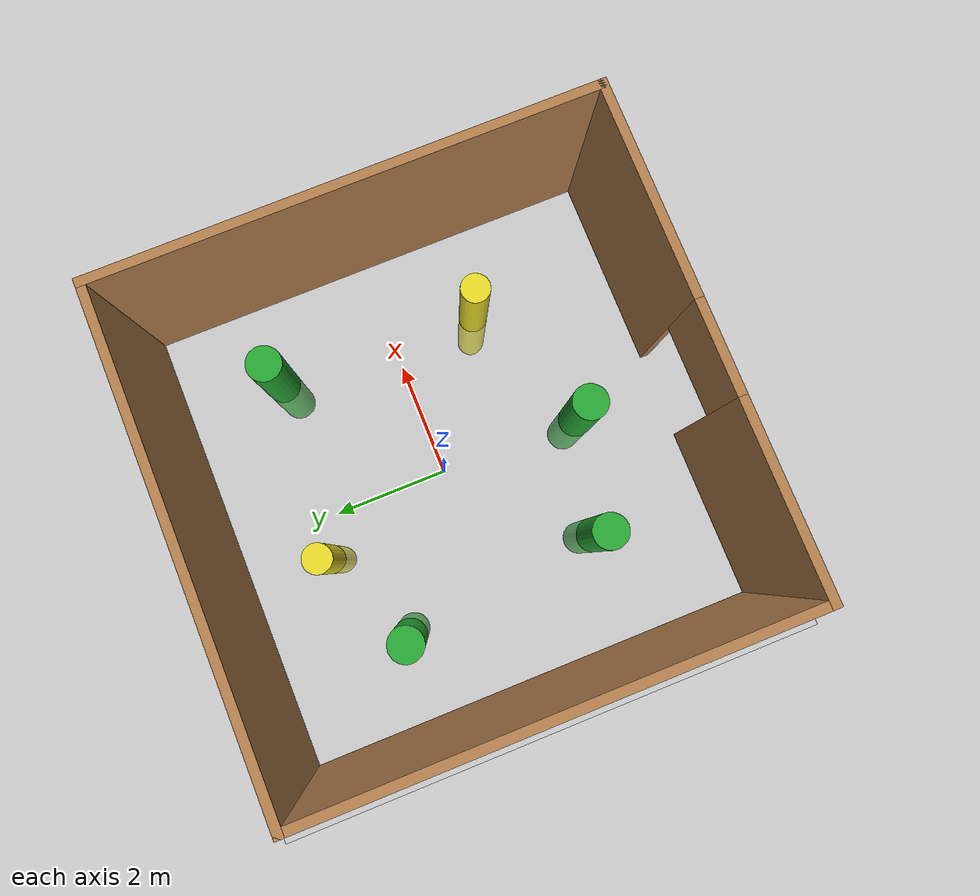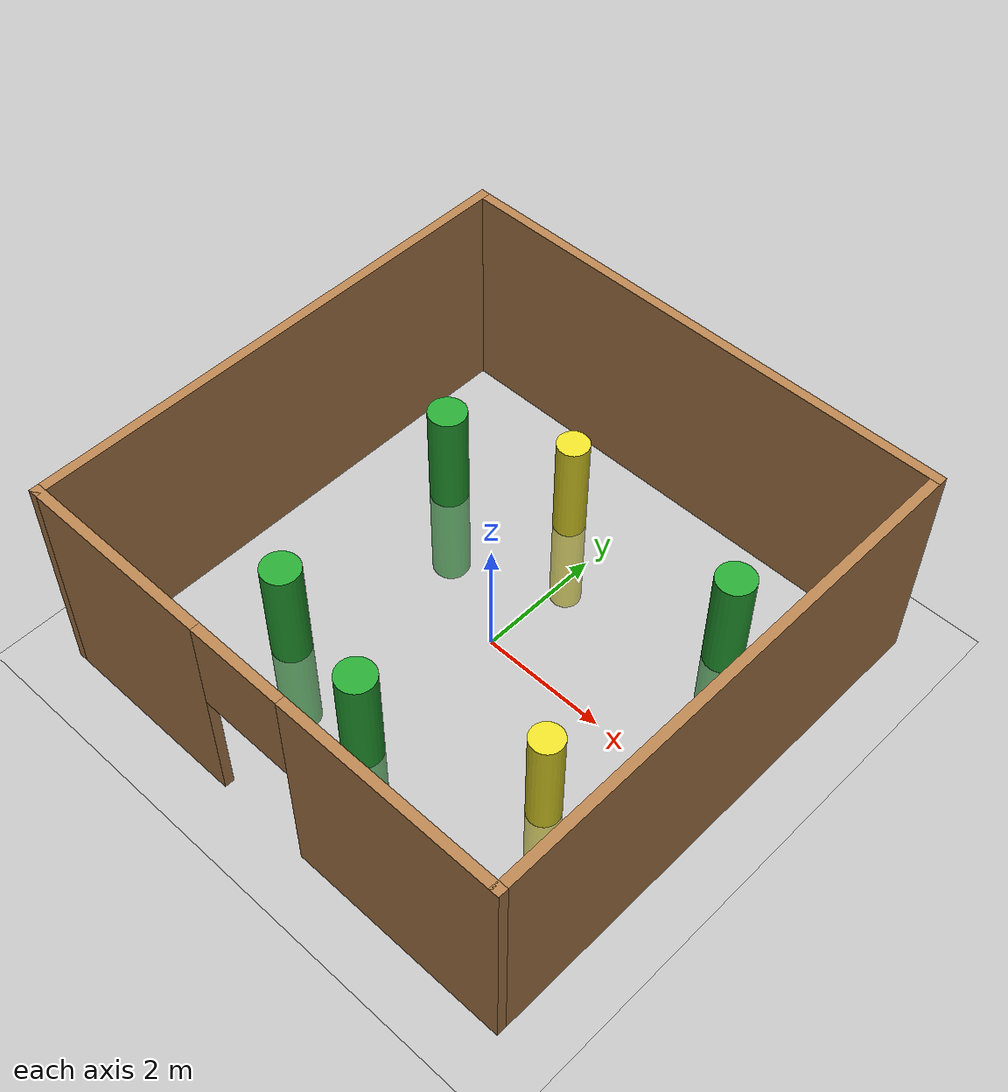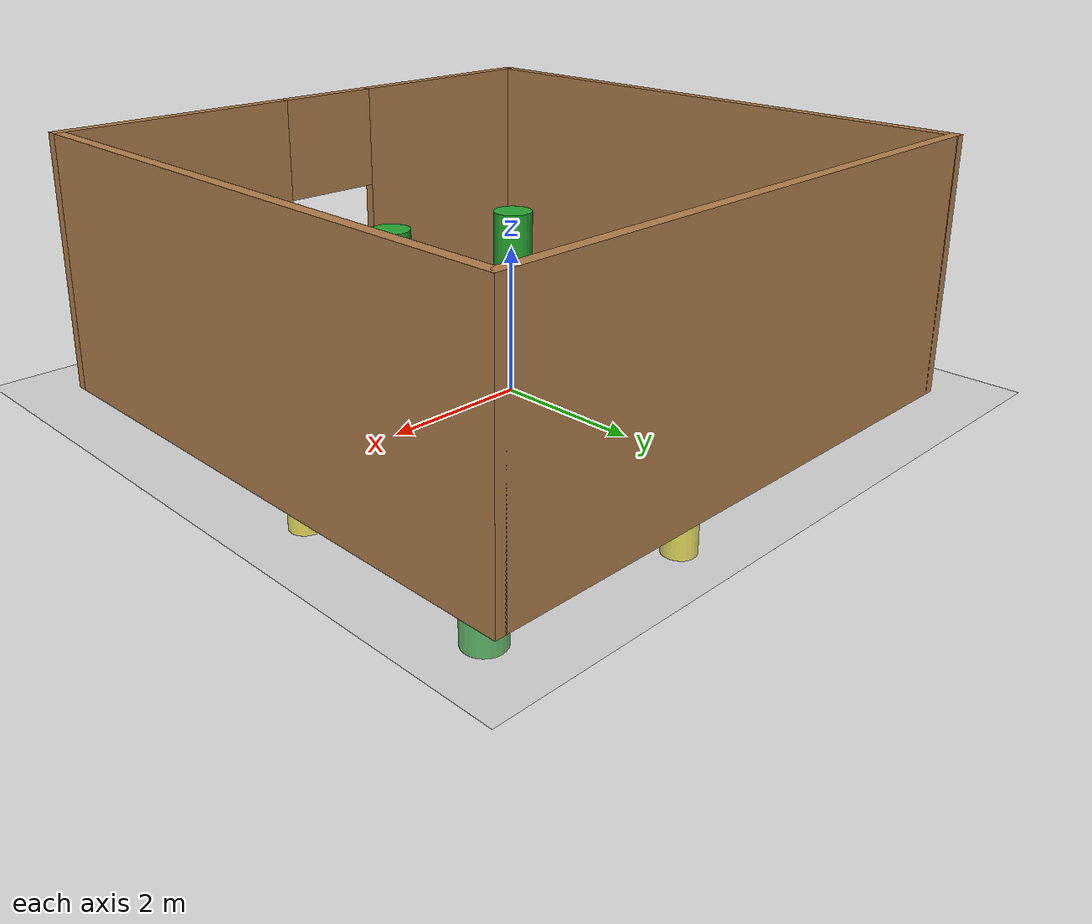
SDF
<?xml version="1.0" ?>
<sdf version="1.5">
  <world name="default">

    <!-- A global light source -->
    <include>
      <uri>model://sun</uri>
    </include>

    <!-- A ground plane -->
    <include>
      <uri>model://ground_plane</uri>
    </include>
    <physics name='default_physics' default='0' type='ode'>
      <gravity>0 0 -9.8066</gravity>
      <ode>
        <solver>
          <type>quick</type>
          <iters>150</iters>
          <sor>1.3</sor>
          <use_dynamic_moi_rescaling>0</use_dynamic_moi_rescaling>
        </solver>
        <constraints>
          <cfm>0.00001</cfm>
          <erp>0.2</erp>
          <contact_max_correcting_vel>1000</contact_max_correcting_vel>
          <contact_surface_layer>0.01</contact_surface_layer>
        </constraints>
      </ode>
      <max_step_size>0.004</max_step_size>
      <real_time_factor>1000.0</real_time_factor>
      <real_time_update_rate>250</real_time_update_rate>
      <magnetic_field>6.0e-6 2.3e-5 -4.2e-5</magnetic_field>
    </physics>
    <!-- Testing the automatic population of objects -->
    <model name='room'>
      <include>
        <uri>model://room_obs</uri>
        <pose>0.05 -0.1 0 0 0 0</pose>
      </include>
    </model>
    <model name='pillar_s_1'>
      <include>
        <uri>model://pillar_s</uri>
        <pose>2.5 2.1 0 0 0 0</pose>
      </include>
    </model>
    <model name='pillar_s_2'>
      <include>
        <uri>model://pillar_s_yellow</uri>
        <pose>-0.7 2.4 0 0 0 0</pose>
      </include>
    </model>
    <model name='pillar_s_3'>
      <include>
        <uri>model://pillar_s</uri>
        <pose>-2.43 1.6 0 0 0 0</pose>
      </include>
    </model>
    <model name='pillar_s_4'>
      <include>
        <uri>model://pillar_s_yellow</uri>
        <pose>2.4 -1.5 0 0 0 0</pose>
      </include>
    </model>
    <model name='pillar_s_5'>
      <include>
        <uri>model://pillar_s</uri>
        <pose>0 -2.5 0 0 0 0</pose>
      </include>
    </model>
    <model name='pillar_m_6'>
      <include>
        <uri>model://pillar_s</uri>
        <pose>-2 -2 0 0 0 0</pose>
      </include>
    </model>

  </world>
</sdf>

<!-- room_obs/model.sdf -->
<sdf version='1.6'>
  <model name='room_obs'>
    <pose frame=''>0 0 0 0 -0 0</pose>
    <link name='Wall_31'>
      <collision name='Wall_31_Collision'>
        <geometry>
          <box>
            <size>8.15 0.15 3.5</size>
          </box>
        </geometry>
        <pose frame=''>0 0 1.75 0 -0 0</pose>
      </collision>
      <visual name='Wall_31_Visual'>
        <pose frame=''>0 0 1.75 0 -0 0</pose>
        <geometry>
          <box>
            <size>8.15 0.15 3.5</size>
          </box>
        </geometry>
        <material>
          <script>
            <uri>file://media/materials/scripts/gazebo.material</uri>
            <name>Gazebo/Wood</name>
          </script>
          <ambient>1 1 1 1</ambient>
        </material>
        <meta>
          <layer>0</layer>
        </meta>
      </visual>
      <pose frame=''>0 4 0 0 -0 0</pose>
    </link>
    <link name='Wall_34'>
      <collision name='Wall_34_Collision'>
        <geometry>
          <box>
            <size>8.15 0.15 3.5</size>
          </box>
        </geometry>
        <pose frame=''>0 0 1.75 0 -0 0</pose>
      </collision>
      <visual name='Wall_34_Visual'>
        <pose frame=''>0 0 1.75 0 -0 0</pose>
        <geometry>
          <box>
            <size>8.15 0.15 3.5</size>
          </box>
        </geometry>
        <material>
          <script>
            <uri>file://media/materials/scripts/gazebo.material</uri>
            <name>Gazebo/Wood</name>
          </script>
          <ambient>1 1 1 1</ambient>
        </material>
        <meta>
          <layer>0</layer>
        </meta>
      </visual>
      <pose frame=''>4 0 0 0 -0 -1.5708</pose>
    </link>
    <link name='Wall_35'>
      <pose frame=''>0 -4 0 0 -0 3.14159</pose>
      <visual name='Wall_35_Visual_0'>
        <pose frame=''>-2.31574 0 1.75 0 -0 0</pose>
        <geometry>
          <box>
            <size>3.51851 0.15 3.5</size>
          </box>
        </geometry>
        <material>
          <script>
            <uri>file://media/materials/scripts/gazebo.material</uri>
            <name>Gazebo/Wood</name>
          </script>
          <ambient>1 1 1 1</ambient>
        </material>
        <meta>
          <layer>0</layer>
        </meta>
      </visual>
      <collision name='Wall_35_Collision_0'>
        <geometry>
          <box>
            <size>3.51851 0.15 3.5</size>
          </box>
        </geometry>
        <pose frame=''>-2.31574 0 1.75 0 -0 0</pose>
      </collision>
      <visual name='Wall_35_Visual_1'>
        <pose frame=''>2.50926 0 1.75 0 -0 0</pose>
        <geometry>
          <box>
            <size>3.13149 0.15 3.5</size>
          </box>
        </geometry>
        <material>
          <script>
            <uri>file://media/materials/scripts/gazebo.material</uri>
            <name>Gazebo/Wood</name>
          </script>
          <ambient>1 1 1 1</ambient>
        </material>
        <meta>
          <layer>0</layer>
        </meta>
      </visual>
      <collision name='Wall_35_Collision_1'>
        <geometry>
          <box>
            <size>3.13149 0.15 3.5</size>
          </box>
        </geometry>
        <pose frame=''>2.50926 0 1.75 0 -0 0</pose>
      </collision>
      <visual name='Wall_35_Visual_2'>
        <pose frame=''>0.193511 0 2.75 0 -0 0</pose>
        <geometry>
          <box>
            <size>1.5 0.15 1.5</size>
          </box>
        </geometry>
        <material>
          <script>
            <uri>file://media/materials/scripts/gazebo.material</uri>
            <name>Gazebo/Wood</name>
          </script>
          <ambient>1 1 1 1</ambient>
        </material>
        <meta>
          <layer>0</layer>
        </meta>
      </visual>
      <collision name='Wall_35_Collision_2'>
        <geometry>
          <box>
            <size>1.5 0.15 1.5</size>
          </box>
        </geometry>
        <pose frame=''>0.193511 0 2.75 0 -0 0</pose>
      </collision>
    </link>
    <link name='Wall_36'>
      <collision name='Wall_36_Collision'>
        <geometry>
          <box>
            <size>8.15 0.15 3.5</size>
          </box>
        </geometry>
        <pose frame=''>0 0 1.75 0 -0 0</pose>
      </collision>
      <visual name='Wall_36_Visual'>
        <pose frame=''>0 0 1.75 0 -0 0</pose>
        <geometry>
          <box>
            <size>8.15 0.15 3.5</size>
          </box>
        </geometry>
        <material>
          <script>
            <uri>file://media/materials/scripts/gazebo.material</uri>
            <name>Gazebo/Wood</name>
          </script>
          <ambient>1 1 1 1</ambient>
        </material>
        <meta>
          <layer>0</layer>
        </meta>
      </visual>
      <pose frame=''>-4 0 0 0 -0 1.5708</pose>
    </link>
    <static>1</static>
  </model>
</sdf>

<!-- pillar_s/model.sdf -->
<sdf version='1.6'>
  <model name='pillar_s'>
    <link name='link'>
      <inertial>
        <mass>50</mass>
        <pose frame=''>0 0 0 0 -0 0</pose>
      </inertial>
      <self_collide>0</self_collide>
      <enable_wind>0</enable_wind>
      <kinematic>0</kinematic>
      <pose frame=''>0 0 0 0 -0 0</pose>
      <gravity>1</gravity>
      <visual name='visual'>
        <geometry>
          <cylinder>
            <radius>0.3</radius>
            <length>3.5</length>
          </cylinder>
        </geometry>
        <material>
          <script>
            <name>Gazebo/Green</name>
            <uri>file://media/materials/scripts/gazebo.material</uri>
          </script>
          <shader type='pixel'>
            <normal_map>__default__</normal_map>
          </shader>
          <ambient>0. 0.914 0. 1</ambient>
          <diffuse>0.7 0.7 0.7 1</diffuse>
          <specular>0.01 0.01 0.01 1</specular>
          <emissive>0 0 0 1</emissive>
        </material>
        <pose frame=''>0 0 0 0 -0 0</pose>
        <transparency>0</transparency>
        <cast_shadows>1</cast_shadows>
      </visual>
      <collision name='collision'>
        <laser_retro>0</laser_retro>
        <max_contacts>10</max_contacts>
        <pose frame=''>0 0 0 0 -0 0</pose>
        <geometry>
          <cylinder>
            <radius>0.25</radius>
            <length>3.5</length>
          </cylinder>
        </geometry>
      </collision>
    </link>
    <static>0</static>
    <allow_auto_disable>1</allow_auto_disable>
  </model>
</sdf>

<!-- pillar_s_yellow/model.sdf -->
<sdf version='1.6'>
  <model name='pillar_s_yellow'>
    <link name='link'>
      <inertial>
        <mass>1000</mass>
        <pose frame=''>0 0 0 0 -0 0</pose>
      </inertial>
      <self_collide>0</self_collide>
      <enable_wind>0</enable_wind>
      <kinematic>0</kinematic>
      <pose frame=''>0 0 0 0 -0 0</pose>
      <gravity>1</gravity>
      <visual name='visual'>
        <geometry>
          <cylinder>
            <radius>0.25</radius>
            <length>3.5</length>
          </cylinder>
        </geometry>
        <material>
          <script>
            <name>Gazebo/Yellow</name>
            <uri>file://media/materials/scripts/gazebo.material</uri>
          </script>
          <shader type='pixel'>
            <normal_map>__default__</normal_map>
          </shader>
          <ambient>0.988 0.914 0.31 1</ambient>
        </material>
        <pose frame=''>0 0 0 0 -0 0</pose>
      </visual>
      <collision name='collision'>
        <laser_retro>0</laser_retro>
        <max_contacts>10</max_contacts>
        <pose frame=''>0 0 0 0 -0 0</pose>
        <geometry>
          <cylinder>
            <radius>0.25</radius>
            <length>3.5</length>
          </cylinder>
        </geometry>
      </collision>
    </link>
    <static>0</static>
    <allow_auto_disable>1</allow_auto_disable>
  </model>
</sdf>
